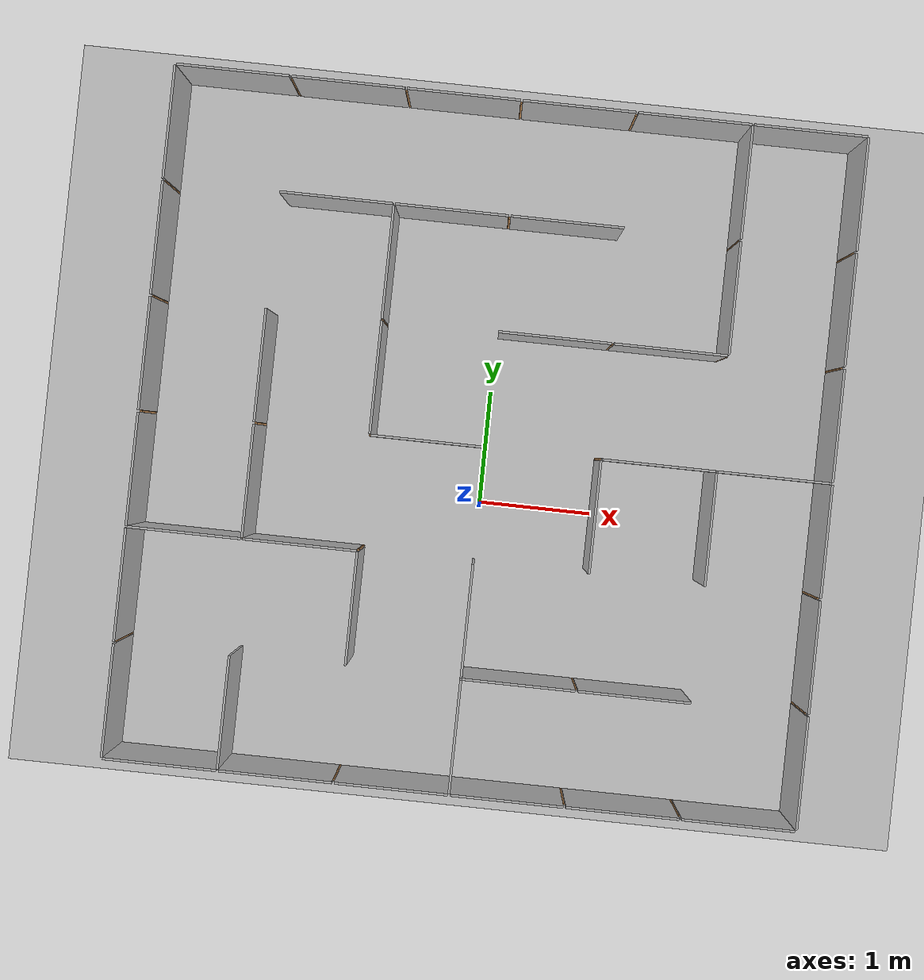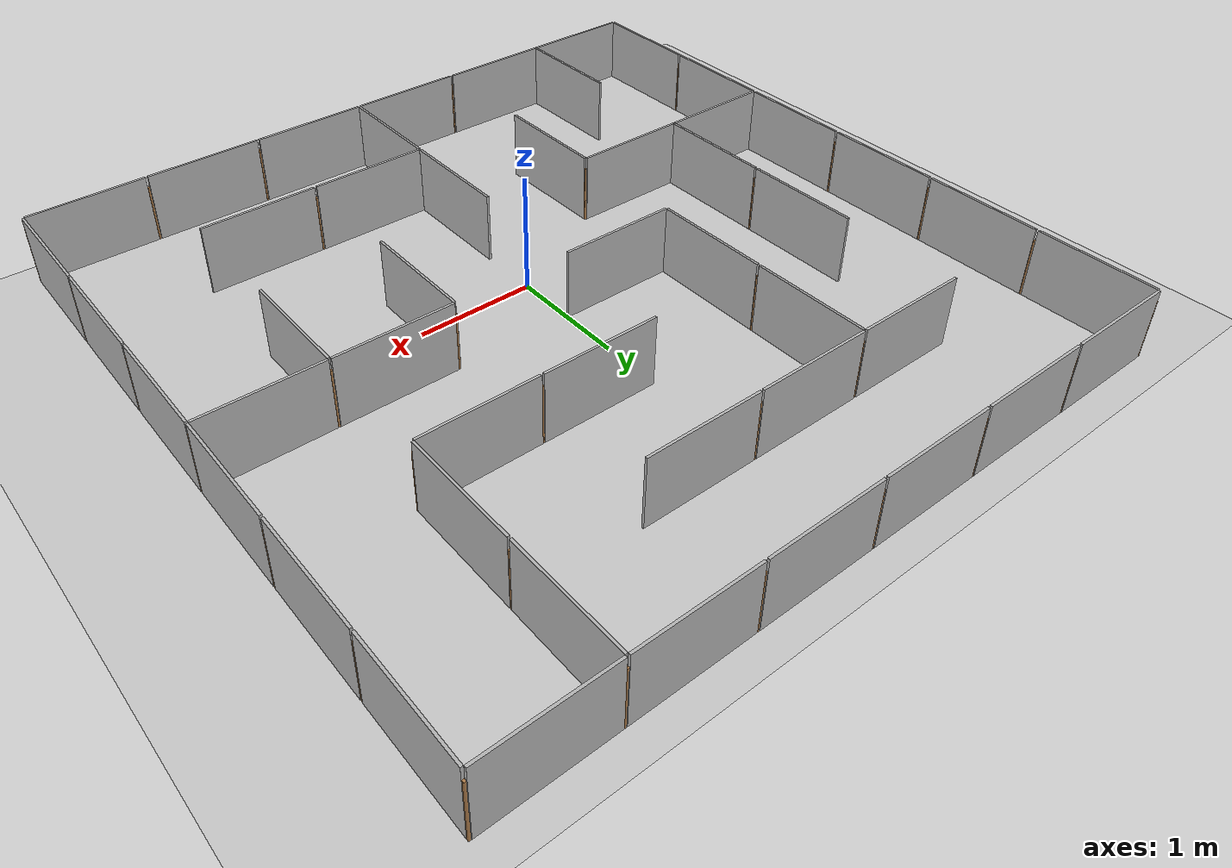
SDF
<?xml version="1.0" ?>
<sdf version="1.5">
  <world name="maze_6x6_v1">

    <physics type="ode">
      <max_step_size>0.00625</max_step_size>
      <real_time_factor>1</real_time_factor>
      <real_time_update_rate>160</real_time_update_rate>
      <gravity>0 0 -9.8</gravity>
    </physics>

    <!-- View persepective at startup -->
    <gui fullscreen='0'>
      <camera name='user_camera'>
        <pose frame=''>4.70771 -4.35195 3.8148 0 0.575643 2.3522</pose>
        <view_controller>orbit</view_controller>
        <projection_type>perspective</projection_type>
      </camera>
    </gui>

    <!-- Disable shadows, disable grid -->
    <scene>
      <shadows>false</shadows>
      <ambient>0.2 0.2 0.2 1</ambient>
      <background>1 1 1 1</background>
      <grid>false</grid>
      <origin_visual>false</origin_visual>
    </scene>

    <!-- A global light source -->
    <include>
      <uri>model://sun</uri>
    </include>

    <!-- A directed light source -->
    <light name="camera_spot_1_light" type='spot'>
      <pose>-6 4 4 0 -1 -0.8</pose>
      <diffuse>0.5 0.5 0.5 1</diffuse>
      <specular>0.1 0.1 0.1 1</specular>
      <direction>0 0 -1</direction>
      <attenuation>
        <range>20</range>
        <constant>0.2</constant>
        <linear>0.01</linear>
        <quadratic>0.001</quadratic>
      </attenuation>
      <cast_shadows>0</cast_shadows>
      <spot>
        <inner_angle>0.6</inner_angle>
        <outer_angle>1</outer_angle>
        <falloff>1</falloff>
      </spot>
    </light>

    <!-- A second directed light source -->
    <light name="camera_spot_2_light" type='spot'>
      <pose>5 -3 4 0 0.8 -0.6</pose>
      <diffuse>0.5 0.5 0.5 1</diffuse>
      <specular>0.1 0.1 0.1 1</specular>
      <direction>0 0 -1</direction>
      <attenuation>
        <range>20</range>
        <constant>0.3</constant>
        <linear>0.01</linear>
        <quadratic>0.001</quadratic>
      </attenuation>
      <cast_shadows>0</cast_shadows>
      <spot>
        <inner_angle>0.6</inner_angle>
        <outer_angle>1</outer_angle>
        <falloff>1</falloff>
      </spot>
    </light>

    <!-- A wooden parquet ground plane -->
    <include>
      <uri>model://floor_parquet2</uri>
      <pose>0 0.5 0 0 0 0</pose>
    </include>

    <!-- A maze made of plywood panels -->
    <include>
      <uri>model://maze_3_6x6</uri>
      <pose>-3 -2.5 0 0 0 0</pose>
    </include>

    <!-- A set of tag36h11 AprilTags that match the panel positions -->

  </world>
</sdf>

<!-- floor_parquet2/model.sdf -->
<sdf version='1.4'>
  <model name='parquet2_plane'>
    <static>true</static>
    <link name='link'>
      <collision name='collision_parquet2'>
        <geometry>
          <plane>
            <normal>0 0 1</normal>
            <size>500 500</size>
          </plane>
        </geometry>
        <surface>
          <friction>
            <ode>
              <mu>0.5</mu>
              <mu2>.5</mu2>
            </ode>
          </friction>
        </surface>
      </collision>
      <visual name='visual_parquet2'>
        <pose>0 0 0 0 0 0</pose>

        <cast_shadows>false</cast_shadows>
        <geometry>
          <plane>
            <normal>0 0 1</normal>
            <size>8 6.5</size>
          </plane>
        </geometry>
        <material>
          <script>
            <uri>model://floor_parquet2/materials/scripts</uri>
            <uri>model://floor_parquet2/materials/textures</uri>
            <name>vrc/parquet2</name>
          </script>
        </material>
      </visual>
    </link>
  </model>
</sdf>

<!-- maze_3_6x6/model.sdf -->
<sdf version="1.5">
    <model name="maze_3_6x6">

<!-- outer wall along x axis (y:0) -->
        <include>
            <name>plywood_panel_0_0_b</name>
            <uri>model://plywood_panel</uri>
            <pose>0 0 0 0 0 1.571</pose>
        </include>
        <include>
            <name>wooden_joint_0_0_b</name>
            <uri>model://wooden_joint</uri>
            <pose>0 0 0 0 0 0</pose>
        </include>

        <include>
            <name>plywood_panel_1_0_b</name>
            <uri>model://plywood_panel</uri>
            <pose>1 0 0 0 0 1.571</pose>
        </include>
        <include>
            <name>wooden_joint_1_0_b</name>
            <uri>model://wooden_joint</uri>
            <pose>1 0 0 0 0 0</pose>
        </include>

        <include>
            <name>plywood_panel_2_0_b</name>
            <uri>model://plywood_panel</uri>
            <pose>2 0 0 0 0 1.571</pose>
        </include>
        <include>
            <name>wooden_joint_2_0_b</name>
            <uri>model://wooden_joint</uri>
            <pose>2 0 0 0 0 0</pose>
        </include>

        <include>
            <name>plywood_panel_3_0_b</name>
            <uri>model://plywood_panel</uri>
            <pose>3 0 0 0 0 1.571</pose>
        </include>
        <include>
            <name>wooden_joint_3_0_b</name>
            <uri>model://wooden_joint</uri>
            <pose>3 0 0 0 0 0</pose>
        </include>

        <include>
            <name>plywood_panel_4_0_b</name>
            <uri>model://plywood_panel</uri>
            <pose>4 0 0 0 0 1.571</pose>
        </include>
        <include>
            <name>wooden_joint_4_0_b</name>
            <uri>model://wooden_joint</uri>
            <pose>4 0 0 0 0 0</pose>
        </include>

        <include>
            <name>plywood_panel_5_0_b</name>
            <uri>model://plywood_panel</uri>
            <pose>5 0 0 0 0 1.571</pose>
        </include>
        <include>
            <name>wooden_joint_5_0_b</name>
            <uri>model://wooden_joint</uri>
            <pose>5 0 0 0 0 0</pose>
        </include>

<!-- outer wall along x axis (y:6) -->
        <include>
            <name>plywood_panel_0_6_b</name>
            <uri>model://plywood_panel</uri>
            <pose>0 6 0 0 0 1.571</pose>
        </include>
        <include>
            <name>wooden_joint_0_6_b</name>
            <uri>model://wooden_joint</uri>
            <pose>0 6 0 0 0 0</pose>
        </include>

        <include>
            <name>plywood_panel_1_6_b</name>
            <uri>model://plywood_panel</uri>
            <pose>1 6 0 0 0 1.571</pose>
        </include>
        <include>
            <name>wooden_joint_1_6_b</name>
            <uri>model://wooden_joint</uri>
            <pose>1 6 0 0 0 0</pose>
        </include>

        <include>
            <name>plywood_panel_2_6_b</name>
            <uri>model://plywood_panel</uri>
            <pose>2 6 0 0 0 1.571</pose>
        </include>
        <include>
            <name>wooden_joint_2_6_b</name>
            <uri>model://wooden_joint</uri>
            <pose>2 6 0 0 0 0</pose>
        </include>

        <include>
            <name>plywood_panel_3_6_b</name>
            <uri>model://plywood_panel</uri>
            <pose>3 6 0 0 0 1.571</pose>
        </include>
        <include>
            <name>wooden_joint_3_6_b</name>
            <uri>model://wooden_joint</uri>
            <pose>3 6 0 0 0 0</pose>
        </include>

        <include>
            <name>plywood_panel_4_6_b</name>
            <uri>model://plywood_panel</uri>
            <pose>4 6 0 0 0 1.571</pose>
        </include>
        <include>
            <name>wooden_joint_4_6_b</name>
            <uri>model://wooden_joint</uri>
            <pose>4 6 0 0 0 0</pose>
        </include>

        <include>
            <name>plywood_panel_5_6_b</name>
            <uri>model://plywood_panel</uri>
            <pose>5 6 0 0 0 1.571</pose>
        </include>
        <include>
            <name>wooden_joint_5_6_b</name>
            <uri>model://wooden_joint</uri>
            <pose>5 6 0 0 0 0</pose>
        </include>

<!-- outer wall along y axis -->
        <include>
            <name>plywood_panel_0_0_a</name>
            <uri>model://plywood_panel</uri>
            <pose>0 0 0 0 0 3.14159</pose>
        </include>
        <include>
            <name>wooden_joint_6_6_a</name>
            <uri>model://wooden_joint</uri>
            <pose>6 6 0 0 0 0</pose>
        </include>

        <include>
            <name>plywood_panel_0_1_a</name>
            <uri>model://plywood_panel</uri>
            <pose>0 1 0 0 0 3.14159</pose>
        </include>
        <include>
            <name>wooden_joint_0_1_a</name>
            <uri>model://wooden_joint</uri>
            <pose>0 1 0 0 0 0</pose>
        </include>

        <include>
            <name>plywood_panel_0_2_a</name>
            <uri>model://plywood_panel</uri>
            <pose>0 2 0 0 0 3.14159</pose>
        </include>
        <include>
            <name>wooden_joint_0_2_a</name>
            <uri>model://wooden_joint</uri>
            <pose>0 2 0 0 0 0</pose>
        </include>

        <include>
            <name>plywood_panel_0_3_a</name>
            <uri>model://plywood_panel</uri>
            <pose>0 3 0 0 0 3.14159</pose>
        </include>
        <include>
            <name>wooden_joint_0_3_a</name>
            <uri>model://wooden_joint</uri>
            <pose>0 3 0 0 0 0</pose>
        </include>

        <include>
            <name>plywood_panel_0_4_a</name>
            <uri>model://plywood_panel</uri>
            <pose>0 4 0 0 0 3.14159</pose>
        </include>
        <include>
            <name>wooden_joint_0_4_a</name>
            <uri>model://wooden_joint</uri>
            <pose>0 4 0 0 0 0</pose>
        </include>

        <include>
            <name>plywood_panel_0_5_a</name>
            <uri>model://plywood_panel</uri>
            <pose>0 5 0 0 0 3.14159</pose>
        </include>
        <include>
            <name>wooden_joint_0_5_a</name>
            <uri>model://wooden_joint</uri>
            <pose>0 5 0 0 0 0</pose>
        </include>

<!-- outer wall along y axis (x:6)-->
        <include>
            <name>plywood_panel_6_0_a</name>
            <uri>model://plywood_panel</uri>
            <pose>6 0 0 0 0 3.14159</pose>
        </include>
        <include>
            <name>wooden_joint_6_0_a</name>
            <uri>model://wooden_joint</uri>
            <pose>6 0 0 0 0 0</pose>
        </include>

        <include>
            <name>plywood_panel_6_1_a</name>
            <uri>model://plywood_panel</uri>
            <pose>6 1 0 0 0 3.14159</pose>
        </include>
        <include>
            <name>wooden_joint_6_1_a</name>
            <uri>model://wooden_joint</uri>
            <pose>6 1 0 0 0 0</pose>
        </include>

        <include>
            <name>plywood_panel_6_2_a</name>
            <uri>model://plywood_panel</uri>
            <pose>6 2 0 0 0 3.14159</pose>
        </include>
        <include>
            <name>wooden_joint_6_2_a</name>
            <uri>model://wooden_joint</uri>
            <pose>6 2 0 0 0 0</pose>
        </include>

        <include>
            <name>plywood_panel_6_3_a</name>
            <uri>model://plywood_panel</uri>
            <pose>6 3 0 0 0 3.14159</pose>
        </include>
        <include>
            <name>wooden_joint_6_3_a</name>
            <uri>model://wooden_joint</uri>
            <pose>6 3 0 0 0 0</pose>
        </include>

        <include>
            <name>plywood_panel_6_4_a</name>
            <uri>model://plywood_panel</uri>
            <pose>6 4 0 0 0 3.14159</pose>
        </include>
        <include>
            <name>wooden_joint_6_4_a</name>
            <uri>model://wooden_joint</uri>
            <pose>6 4 0 0 0 0</pose>
        </include>

        <include>
            <name>plywood_panel_6_5_a</name>
            <uri>model://plywood_panel</uri>
            <pose>6 5 0 0 0 3.14159</pose>
        </include>
       <include>
            <name>wooden_joint_6_5_a</name>
            <uri>model://wooden_joint</uri>
            <pose>6 5 0 0 0 0</pose>
        </include>

<!-- interior panels -->

<!-- row 1 -->
        <include>
            <name>plywood_panel_4_1_c</name>
            <uri>model://plywood_panel</uri>
            <pose>4 1 0 0 0 -1.5708</pose>
        </include>

        <include>
            <name>plywood_panel_5_1_c</name>
            <uri>model://plywood_panel</uri>
            <pose>5 1 0 0 0 -1.5708</pose>
        </include>

<!-- row 2 -->
        <include>
            <name>plywood_panel_1_2_c</name>
            <uri>model://plywood_panel</uri>
            <pose>1 2 0 0 0 -1.5708</pose>
        </include>

        <include>
            <name>plywood_panel_2_2_c</name>
            <uri>model://plywood_panel</uri>
            <pose>2 2 0 0 0 -1.5708</pose>
        </include>

<!-- row 3 -->
        <include>
            <name>plywood_panel_3_3_c</name>
            <uri>model://plywood_panel</uri>
            <pose>3 3 0 0 0 -1.5708</pose>
        </include>

        <include>
            <name>plywood_panel_5_3_c</name>
            <uri>model://plywood_panel</uri>
            <pose>5 3 0 0 0 -1.5708</pose>
        </include>

        <include>
            <name>plywood_panel_6_3_c</name>
            <uri>model://plywood_panel</uri>
            <pose>6 3 0 0 0 -1.5708</pose>
        </include>

<!-- row 4 -->
        <include>
            <name>plywood_panel_4_4_c</name>
            <uri>model://plywood_panel</uri>
            <pose>4 4 0 0 0 -1.5708</pose>
        </include>

        <include>
            <name>plywood_panel_5_4_c</name>
            <uri>model://plywood_panel</uri>
            <pose>5 4 0 0 0 -1.5708</pose>
        </include>

<!-- row 5 -->
        <include>
            <name>plywood_panel_2_5_c</name>
            <uri>model://plywood_panel</uri>
            <pose>2 5 0 0 0 -1.5708</pose>
        </include>

        <include>
            <name>plywood_panel_3_5_c</name>
            <uri>model://plywood_panel</uri>
            <pose>3 5 0 0 0 -1.5708</pose>
        </include>

        <include>
            <name>plywood_panel_4_5_c</name>
            <uri>model://plywood_panel</uri>
            <pose>4 5 0 0 0 -1.5708</pose>
        </include>

<!-- column 1 -->
        <include>
            <name>plywood_panel_1_1_a</name>
            <uri>model://plywood_panel</uri>
            <pose>1 1 0 0 0 0</pose>
        </include>

        <include>
            <name>plywood_panel_1_3_a</name>
            <uri>model://plywood_panel</uri>
            <pose>1 3 0 0 0 0</pose>
        </include>

        <include>
            <name>plywood_panel_1_4_a</name>
            <uri>model://plywood_panel</uri>
            <pose>1 4 0 0 0 0</pose>
        </include>

<!-- column 2 -->
        <include>
            <name>plywood_panel_2_2_a</name>
            <uri>model://plywood_panel</uri>
            <pose>2 2 0 0 0 0</pose>
        </include>

        <include>
            <name>plywood_panel_2_4_a</name>
            <uri>model://plywood_panel</uri>
            <pose>2 4 0 0 0 0</pose>
        </include>

        <include>
            <name>plywood_panel_2_5_a</name>
            <uri>model://plywood_panel</uri>
            <pose>2 5 0 0 0 0</pose>
        </include>

<!-- column 3 -->
        <include>
            <name>plywood_panel_3_1_a</name>
            <uri>model://plywood_panel</uri>
            <pose>3 1 0 0 0 0</pose>
        </include>

        <include>
            <name>plywood_panel_3_2_a</name>
            <uri>model://plywood_panel</uri>
            <pose>3 2 0 0 0 0</pose>
        </include>

<!-- column 4 -->
        <include>
            <name>plywood_panel_4_3_a</name>
            <uri>model://plywood_panel</uri>
            <pose>4 3 0 0 0 0</pose>
        </include>

<!-- column 5 -->
        <include>
            <name>plywood_panel_5_3_a</name>
            <uri>model://plywood_panel</uri>
            <pose>5 3 0 0 0 0</pose>
        </include>

        <include>
            <name>plywood_panel_5_5_a</name>
            <uri>model://plywood_panel</uri>
            <pose>5 5 0 0 0 0</pose>
        </include>

        <include>
            <name>plywood_panel_5_6_a</name>
            <uri>model://plywood_panel</uri>
            <pose>5 6 0 0 0 0</pose>
        </include>

<!-- interior panel joints -->

<!-- row 1 -->
        <include>
            <name>wooden_joint_3_1</name>
            <uri>model://wooden_joint</uri>
            <pose>3 1 0 0 0 0</pose>
        </include>

        <include>
            <name>wooden_joint_4_1</name>
            <uri>model://wooden_joint</uri>
            <pose>4 1 0 0 0 0</pose>
        </include>

<!-- row 2 -->
        <include>
            <name>wooden_joint_1_2</name>
            <uri>model://wooden_joint</uri>
            <pose>1 2 0 0 0 0</pose>
        </include>

        <include>
            <name>wooden_joint_2_2</name>
            <uri>model://wooden_joint</uri>
            <pose>2 2 0 0 0 0</pose>
        </include>

<!-- row 3 -->
        <include>
            <name>wooden_joint_1_3</name>
            <uri>model://wooden_joint</uri>
            <pose>1 3 0 0 0 0</pose>
        </include>

        <include>
            <name>wooden_joint_2_3</name>
            <uri>model://wooden_joint</uri>
            <pose>2 3 0 0 0 0</pose>
        </include>

        <include>
            <name>wooden_joint_4_3</name>
            <uri>model://wooden_joint</uri>
            <pose>4 3 0 0 0 0</pose>
        </include>

        <include>
            <name>wooden_joint_5_3</name>
            <uri>model://wooden_joint</uri>
            <pose>5 3 0 0 0 0</pose>
        </include>

<!-- row 4 -->
        <include>
            <name>wooden_joint_2_4</name>
            <uri>model://wooden_joint</uri>
            <pose>2 4 0 0 0 0</pose>
        </include>

        <include>
            <name>wooden_joint_4_4</name>
            <uri>model://wooden_joint</uri>
            <pose>4 4 0 0 0 0</pose>
        </include>

        <include>
            <name>wooden_joint_5_4</name>
            <uri>model://wooden_joint</uri>
            <pose>5 4 0 0 0 0</pose>
        </include>

<!-- row 5 -->
        <include>
            <name>wooden_joint_2_5</name>
            <uri>model://wooden_joint</uri>
            <pose>2 5 0 0 0 0</pose>
        </include>

        <include>
            <name>wooden_joint_3_5</name>
            <uri>model://wooden_joint</uri>
            <pose>3 5 0 0 0 0</pose>
        </include>

        <include>
            <name>wooden_joint_5_5</name>
            <uri>model://wooden_joint</uri>
            <pose>5 5 0 0 0 0</pose>
        </include>

    </model>
</sdf>

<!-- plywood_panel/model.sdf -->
<sdf version="1.4">
    <model name="plywood_panel">
        <static>true</static>

        <link name="main">
            <pose>0 0 0 0 0 0</pose>
            <collision name="collision">
                <pose>0.0 -0.5 0.3 -1.571 0 -1.571</pose>
                <geometry>
                    <box>
                        <size>0.98 0.6 0.02</size>
                    </box>
                </geometry>
            </collision>

            <visual name="visual">
                <!-- offset origin to align to the center of one grid edge and rotate to vertical position -->
                <pose>0.01 -0.01 0 0 -1.571 0</pose>
                <geometry>
                    <mesh>
                        <scale>1.0 1.0 1.0</scale>
                        <!-- measures 0.98 x 0.6 x 0.02 mt, origin is at one corner of the panel -->
                        <uri>model://plywood_panel/meshes/plywood.dae</uri>
                    </mesh>
                </geometry>
            </visual>
        </link>

    </model>
</sdf>

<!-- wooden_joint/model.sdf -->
<sdf version='1.6'>
  <model name='wooden_joint'>
    <link name='link_0'>
      <pose frame=''>0 0 0.25 0 -0 0</pose>
      <inertial>
        <mass>0.00215981</mass>
        <inertia>
          <ixx>0.00018028</ixx>
          <ixy>0</ixy>
          <ixz>0</ixz>
          <iyy>0.00018028</iyy>
          <iyz>0</iyz>
          <izz>5.8e-07</izz>
        </inertia>
        <pose frame=''>0 0 0 0 -0 0</pose>
      </inertial>
      <gravity>1</gravity>
      <self_collide>0</self_collide>
      <kinematic>0</kinematic>
      <visual name='visual'>
        <pose frame=''>0 0 0 0 -0 0</pose>
        <geometry>
          <cylinder>
            <radius>0.01</radius>
            <length>0.5</length>
          </cylinder>
        </geometry>
        <material>
          <lighting>1</lighting>
          <script>
            <uri>file://media/materials/scripts/gazebo.material</uri>
            <name>Gazebo/Wood</name>
          </script>
          <shader type='pixel'>
            <normal_map>__default__</normal_map>
          </shader>
          <ambient>0.3 0.3 0.3 1</ambient>
          <diffuse>0.7 0.7 0.7 1</diffuse>
          <specular>0.01 0.01 0.01 1</specular>
          <emissive>0 0 0 1</emissive>
        </material>
        <transparency>0</transparency>
        <cast_shadows>1</cast_shadows>
      </visual>
      <collision name='collision'>
        <laser_retro>0</laser_retro>
        <max_contacts>10</max_contacts>
        <pose frame=''>0 0 0 0 -0 0</pose>
        <geometry>
          <cylinder>
            <radius>0.01</radius>
            <length>0.5</length>
          </cylinder>
        </geometry>
        <surface>
          <friction>
            <ode>
              <mu>1</mu>
              <mu2>1</mu2>
              <fdir1>0 0 0</fdir1>
              <slip1>0</slip1>
              <slip2>0</slip2>
            </ode>
            <torsional>
              <coefficient>1</coefficient>
              <patch_radius>0</patch_radius>
              <surface_radius>0</surface_radius>
              <use_patch_radius>1</use_patch_radius>
              <ode>
                <slip>0</slip>
              </ode>
            </torsional>
          </friction>
          <bounce>
            <restitution_coefficient>0</restitution_coefficient>
            <threshold>1e+06</threshold>
          </bounce>
          <contact>
            <collide_without_contact>0</collide_without_contact>
            <collide_without_contact_bitmask>1</collide_without_contact_bitmask>
            <collide_bitmask>1</collide_bitmask>
            <ode>
              <soft_cfm>0</soft_cfm>
              <soft_erp>0.2</soft_erp>
              <kp>1e+13</kp>
              <kd>1</kd>
              <max_vel>0.01</max_vel>
              <min_depth>0</min_depth>
            </ode>
            <bullet>
              <split_impulse>1</split_impulse>
              <split_impulse_penetration_threshold>-0.01</split_impulse_penetration_threshold>
              <soft_cfm>0</soft_cfm>
              <soft_erp>0.2</soft_erp>
              <kp>1e+13</kp>
              <kd>1</kd>
            </bullet>
          </contact>
        </surface>
      </collision>
    </link>
    <static>1</static>
    <allow_auto_disable>1</allow_auto_disable>
  </model>
</sdf>
